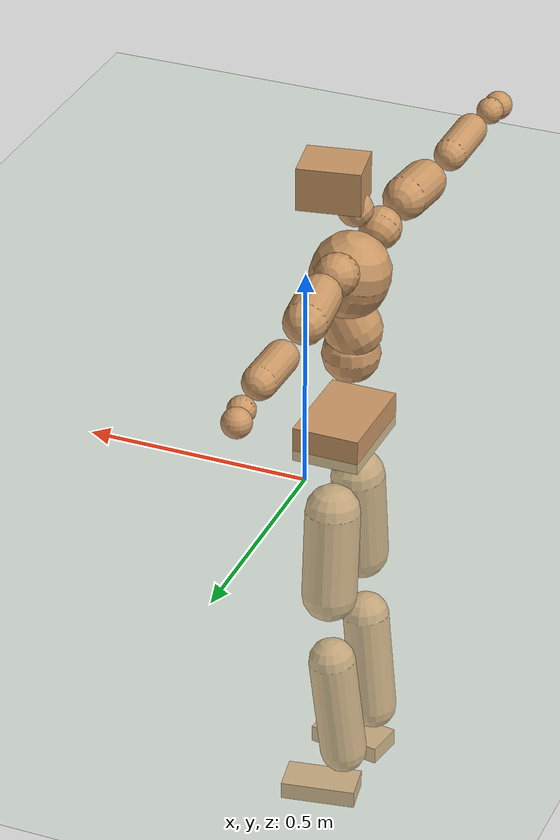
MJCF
<mujoco model="humanoid">
  <compiler coordinate="local" angle="radian"/>
  <default>
    <joint damping="0.0" armature="0.01" stiffness="0.0" limited="true"/>
    <geom conaffinity="1" condim="3" contype="7" margin="0.001" rgba="0.8 0.6 .4 1"/>
  </default>
  <asset>
    <texture type="skybox" builtin="gradient" rgb1=".4 .5 .6" rgb2="0 0 0" width="100" height="100"/>
    <texture builtin="flat" height="1278" mark="cross" markrgb="1 1 1" name="texgeom" random="0.01" rgb1="0.8 0.6 0.4" rgb2="0.8 0.6 0.4" type="cube" width="127"/>
    <texture builtin="checker" height="100" name="texplane" rgb1="0 0 0" rgb2="0.8 0.8 0.8" type="2d" width="100"/>
    <material name="MatPlane" reflectance="0.5" shininess="1" specular="1" texrepeat="60 60" texture="texplane"/>
    <material name="geom" texture="texgeom" texuniform="true"/>
  </asset>
  <worldbody>
    <light cutoff="100" diffuse="1 1 1" dir="-0 0 -1.3" directional="true" exponent="1" pos="0 0 1.3" specular=".1 .1 .1"/>
    <geom conaffinity="1" condim="3" name="floor" pos="0 0 0" rgba="0.8 0.9 0.8 1" size="100 100 .2" type="plane" material="MatPlane"/>
    <body name="Pelvis" pos="0.0007 -0.2125 0.0261">
      <freejoint name="Pelvis"/>
      <geom type="box" contype="1" conaffinity="1" density="5359.375096" pos="-0.0064 0.0001 -0.0128" size="0.0753 0.1114 0.0402" quat="1.0000 0.0000 0.0000 -0.0055" name="Pelvis"/>
      <body name="L_Hip" pos="-0.0113 0.0706 -0.0922">
        <joint name="L_Hip_x" type="hinge" pos="0 0 0" axis="1 0 0" stiffness="1600" damping="160" armature="0.02" range="-180.0000 180.0000"/>
        <joint name="L_Hip_y" type="hinge" pos="0 0 0" axis="0 1 0" stiffness="1600" damping="160" armature="0.02" range="-180.0000 180.0000"/>
        <joint name="L_Hip_z" type="hinge" pos="0 0 0" axis="0 0 1" stiffness="1600" damping="160" armature="0.02" range="-180.0000 180.0000"/>
        <geom type="capsule" contype="1" conaffinity="1" density="2040.816327" size="0.0616" fromto="-0.0005 0.0084 -0.0912 -0.0016 0.0273 -0.2969" name="L_Hip"/>
        <body name="L_Knee" pos="-0.0022 0.0357 -0.3881">
          <joint name="L_Knee_x" type="hinge" pos="0 0 0" axis="1 0 0" stiffness="1600" damping="160" armature="0.02" range="-180.0000 180.0000"/>
          <joint name="L_Knee_y" type="hinge" pos="0 0 0" axis="0 1 0" stiffness="1600" damping="160" armature="0.02" range="-180.0000 180.0000"/>
          <joint name="L_Knee_z" type="hinge" pos="0 0 0" axis="0 0 1" stiffness="1600" damping="160" armature="0.02" range="-180.0000 180.0000"/>
          <geom type="capsule" contype="1" conaffinity="1" density="1234.567901" size="0.053" fromto="-0.0091 -0.0026 -0.0825 -0.0357 -0.0101 -0.3241" name="L_Knee"/>
          <body name="L_Ankle" pos="-0.0447 -0.0126 -0.4065">
            <joint name="L_Ankle_x" type="hinge" pos="0 0 0" axis="1 0 0" stiffness="1600" damping="160" armature="0.02" range="-180.0000 180.0000"/>
            <joint name="L_Ankle_y" type="hinge" pos="0 0 0" axis="0 1 0" stiffness="1600" damping="160" armature="0.02" range="-180.0000 180.0000"/>
            <joint name="L_Ankle_z" type="hinge" pos="0 0 0" axis="0 0 1" stiffness="1600" damping="160" armature="0.02" range="-180.0000 180.0000"/>
            <geom type="box" contype="1" conaffinity="1" density="1000.000038" pos="0.0593 0.0102 -0.0279" size="0.0844 0.0432 0.0203" quat="0.9964 0.0000 0.0000 0.0848" name="L_Ankle"/>
            <body name="L_Toe" pos="0.1187 0.0204 -0.0558">
              <joint name="L_Toe_x" type="hinge" pos="0 0 0" axis="1 0 0" stiffness="1000" damping="100" armature="0.02" range="-180.0000 180.0000"/>
              <joint name="L_Toe_y" type="hinge" pos="0 0 0" axis="0 1 0" stiffness="1000" damping="100" armature="0.02" range="-180.0000 180.0000"/>
              <joint name="L_Toe_z" type="hinge" pos="0 0 0" axis="0 0 1" stiffness="1000" damping="100" armature="0.02" range="-180.0000 180.0000"/>
              <geom type="box" contype="1" conaffinity="1" density="9003058.904709" pos="0.0000 0.0000 0.0275" size="0.0009 0.0022 0.001" quat="0.9958 0.0000 0.0000 0.0915" name="L_Toe"/>
            </body>
          </body>
        </body>
      </body>
      <body name="R_Hip" pos="-0.0079 -0.0678 -0.091">
        <joint name="R_Hip_x" type="hinge" pos="0 0 0" axis="1 0 0" stiffness="1600" damping="160" armature="0.02" range="-180.0000 180.0000"/>
        <joint name="R_Hip_y" type="hinge" pos="0 0 0" axis="0 1 0" stiffness="1600" damping="160" armature="0.02" range="-180.0000 180.0000"/>
        <joint name="R_Hip_z" type="hinge" pos="0 0 0" axis="0 0 1" stiffness="1600" damping="160" armature="0.02" range="-180.0000 180.0000"/>
        <geom type="capsule" contype="1" conaffinity="1" density="2040.816327" size="0.0608" fromto="-0.0012 -0.0092 -0.0903 -0.0039 -0.0313 -0.3063" name="R_Hip"/>
        <body name="R_Knee" pos="-0.0051 -0.0406 -0.3966">
          <joint name="R_Knee_x" type="hinge" pos="0 0 0" axis="1 0 0" stiffness="1600" damping="160" armature="0.02" range="-180.0000 180.0000"/>
          <joint name="R_Knee_y" type="hinge" pos="0 0 0" axis="0 1 0" stiffness="1600" damping="160" armature="0.02" range="-180.0000 180.0000"/>
          <joint name="R_Knee_z" type="hinge" pos="0 0 0" axis="0 0 1" stiffness="1600" damping="160" armature="0.02" range="-180.0000 180.0000"/>
          <geom type="capsule" contype="1" conaffinity="1" density="1234.567901" size="0.0533" fromto="-0.0087 0.0032 -0.0828 -0.0339 0.0124 -0.3237" name="R_Knee"/>
          <body name="R_Ankle" pos="-0.0426 0.0156 -0.4065">
            <joint name="R_Ankle_x" type="hinge" pos="0 0 0" axis="1 0 0" stiffness="1600" damping="160" armature="0.02" range="-180.0000 180.0000"/>
            <joint name="R_Ankle_y" type="hinge" pos="0 0 0" axis="0 1 0" stiffness="1600" damping="160" armature="0.02" range="-180.0000 180.0000"/>
            <joint name="R_Ankle_z" type="hinge" pos="0 0 0" axis="0 0 1" stiffness="1600" damping="160" armature="0.02" range="-180.0000 180.0000"/>
            <geom type="box" contype="1" conaffinity="1" density="999.999995" pos="0.0607 -0.0100 -0.0242" size="0.0856 0.0446 0.0199" quat="0.9967 0.0000 0.0000 -0.0813" name="R_Ankle"/>
            <body name="R_Toe" pos="0.1214 -0.0199 -0.0484">
              <joint name="R_Toe_x" type="hinge" pos="0 0 0" axis="1 0 0" stiffness="1000" damping="100" armature="0.02" range="-180.0000 180.0000"/>
              <joint name="R_Toe_y" type="hinge" pos="0 0 0" axis="0 1 0" stiffness="1000" damping="100" armature="0.02" range="-180.0000 180.0000"/>
              <joint name="R_Toe_z" type="hinge" pos="0 0 0" axis="0 0 1" stiffness="1000" damping="100" armature="0.02" range="-180.0000 180.0000"/>
              <geom type="box" contype="1" conaffinity="1" density="8694667.658405" pos="0.0000 0.0000 0.0257" size="0.0008 0.0022 0.0011" quat="0.9974 0.0000 0.0000 -0.0721" name="R_Toe"/>
            </body>
          </body>
        </body>
      </body>
      <body name="Torso" pos="-0.0191 -0.0024 0.1063">
        <joint name="Torso_x" type="hinge" pos="0 0 0" axis="1 0 0" stiffness="2000" damping="200" armature="0.02" range="-180.0000 180.0000"/>
        <joint name="Torso_y" type="hinge" pos="0 0 0" axis="0 1 0" stiffness="2000" damping="200" armature="0.02" range="-180.0000 180.0000"/>
        <joint name="Torso_z" type="hinge" pos="0 0 0" axis="0 0 1" stiffness="2000" damping="200" armature="0.02" range="-180.0000 180.0000"/>
        <geom type="capsule" contype="1" conaffinity="1" density="2040.816327" size="0.0646" fromto="-0.0007 0.0014 0.0679 -0.0007 0.0015 0.0699" name="Torso"/>
        <body name="Spine" pos="-0.0013 0.0029 0.1379">
          <joint name="Spine_x" type="hinge" pos="0 0 0" axis="1 0 0" stiffness="2000" damping="200" armature="0.02" range="-180.0000 180.0000"/>
          <joint name="Spine_y" type="hinge" pos="0 0 0" axis="0 1 0" stiffness="2000" damping="200" armature="0.02" range="-180.0000 180.0000"/>
          <joint name="Spine_z" type="hinge" pos="0 0 0" axis="0 0 1" stiffness="2000" damping="200" armature="0.02" range="-180.0000 180.0000"/>
          <geom type="capsule" contype="1" conaffinity="1" density="2040.816327" size="0.0643" fromto="0.0301 0.0024 0.0567 -0.0044 -0.0003 -0.0082" name="Spine"/>
          <body name="Chest" pos="0.0257 0.0021 0.0485">
            <joint name="Chest_x" type="hinge" pos="0 0 0" axis="1 0 0" stiffness="2000" damping="200" armature="0.02" range="-180.0000 180.0000"/>
            <joint name="Chest_y" type="hinge" pos="0 0 0" axis="0 1 0" stiffness="2000" damping="200" armature="0.02" range="-180.0000 180.0000"/>
            <joint name="Chest_z" type="hinge" pos="0 0 0" axis="0 0 1" stiffness="2000" damping="200" armature="0.02" range="-180.0000 180.0000"/>
            <geom type="capsule" contype="1" conaffinity="1" density="2040.816327" size="0.0876" fromto="-0.0247 -0.0004 0.0841 -0.0187 -0.0003 0.0637" name="Chest"/>
            <body name="Neck" pos="-0.0544 -0.0006 0.2086">
              <joint name="Neck_x" type="hinge" pos="0 0 0" axis="1 0 0" stiffness="1000" damping="100" armature="0.02" range="-180.0000 180.0000"/>
              <joint name="Neck_y" type="hinge" pos="0 0 0" axis="0 1 0" stiffness="1000" damping="100" armature="0.02" range="-180.0000 180.0000"/>
              <joint name="Neck_z" type="hinge" pos="0 0 0" axis="0 0 1" stiffness="1000" damping="100" armature="0.02" range="-180.0000 180.0000"/>
              <geom type="capsule" contype="1" conaffinity="1" density="1000" size="0.0385" fromto="0.0235 0.0033 0.0304 0.0209 0.0029 0.0270" name="Neck"/>
              <body name="Head" pos="0.0444 0.0062 0.0574">
                <joint name="Head_x" type="hinge" pos="0 0 0" axis="1 0 0" stiffness="1000" damping="100" armature="0.02" range="-180.0000 180.0000"/>
                <joint name="Head_y" type="hinge" pos="0 0 0" axis="0 1 0" stiffness="1000" damping="100" armature="0.02" range="-180.0000 180.0000"/>
                <joint name="Head_z" type="hinge" pos="0 0 0" axis="0 0 1" stiffness="1000" damping="100" armature="0.02" range="-180.0000 180.0000"/>
                <geom type="box" contype="1" conaffinity="1" density="2249.999976" pos="0.0232 0.0041 0.0297" size="0.0692 0.0555 0.0486" quat="0.9962 0.0000 0.0000 0.0876" name="Head"/>
              </body>
            </body>
            <body name="L_Thorax" pos="-0.035 0.0717 0.1186">
              <joint name="L_Thorax_x" type="hinge" pos="0 0 0" axis="1 0 0" stiffness="1000" damping="100" armature="0.02" range="-180.0000 180.0000"/>
              <joint name="L_Thorax_y" type="hinge" pos="0 0 0" axis="0 1 0" stiffness="1000" damping="100" armature="0.02" range="-180.0000 180.0000"/>
              <joint name="L_Thorax_z" type="hinge" pos="0 0 0" axis="0 0 1" stiffness="1000" damping="100" armature="0.02" range="-180.0000 180.0000"/>
              <geom type="capsule" contype="1" conaffinity="1" density="1000" size="0.0474" fromto="-0.0015 0.0436 0.0184 -0.0012 0.0370 0.0156" name="L_Thorax"/>
              <body name="L_Shoulder" pos="-0.0027 0.0806 0.034">
                <joint name="L_Shoulder_x" type="hinge" pos="0 0 0" axis="1 0 0" stiffness="1000" damping="100" armature="0.02" range="-720.0000 720.0000"/>
                <joint name="L_Shoulder_y" type="hinge" pos="0 0 0" axis="0 1 0" stiffness="1000" damping="100" armature="0.02" range="-720.0000 720.0000"/>
                <joint name="L_Shoulder_z" type="hinge" pos="0 0 0" axis="0 0 1" stiffness="1000" damping="100" armature="0.02" range="-720.0000 720.0000"/>
                <geom type="capsule" contype="1" conaffinity="1" density="1000" size="0.0473" fromto="-0.0076 0.0768 -0.0043 -0.0177 0.1794 -0.0100" name="L_Shoulder"/>
                <body name="L_Elbow" pos="-0.0253 0.2562 -0.0142">
                  <joint name="L_Elbow_x" type="hinge" pos="0 0 0" axis="1 0 0" stiffness="1000" damping="100" armature="0.02" range="-720.0000 720.0000"/>
                  <joint name="L_Elbow_y" type="hinge" pos="0 0 0" axis="0 1 0" stiffness="1000" damping="100" armature="0.02" range="-720.0000 720.0000"/>
                  <joint name="L_Elbow_z" type="hinge" pos="0 0 0" axis="0 0 1" stiffness="1000" damping="100" armature="0.02" range="-720.0000 720.0000"/>
                  <geom type="capsule" contype="1" conaffinity="1" density="1000" size="0.0366" fromto="-0.0000 0.0666 0.0026 -0.0001 0.1802 0.0070" name="L_Elbow"/>
                  <body name="L_Wrist" pos="-0.0002 0.2468 0.0096">
                    <joint name="L_Wrist_x" type="hinge" pos="0 0 0" axis="1 0 0" stiffness="600" damping="60" armature="0.02" range="-180.0000 180.0000"/>
                    <joint name="L_Wrist_y" type="hinge" pos="0 0 0" axis="0 1 0" stiffness="600" damping="60" armature="0.02" range="-180.0000 180.0000"/>
                    <joint name="L_Wrist_z" type="hinge" pos="0 0 0" axis="0 0 1" stiffness="600" damping="60" armature="0.02" range="-180.0000 180.0000"/>
                    <geom type="capsule" contype="1" conaffinity="1" density="1000" size="0.0295" fromto="-0.0065 0.0384 -0.0048 -0.0068 0.0404 -0.0050" name="L_Wrist"/>
                    <body name="L_Hand" pos="-0.0134 0.0788 -0.0097">
                      <joint name="L_Hand_x" type="hinge" pos="0 0 0" axis="1 0 0" stiffness="600" damping="60" armature="0.02" range="-180.0000 180.0000"/>
                      <joint name="L_Hand_y" type="hinge" pos="0 0 0" axis="0 1 0" stiffness="600" damping="60" armature="0.02" range="-180.0000 180.0000"/>
                      <joint name="L_Hand_z" type="hinge" pos="0 0 0" axis="0 0 1" stiffness="600" damping="60" armature="0.02" range="-180.0000 180.0000"/>
                      <geom type="sphere" contype="1" conaffinity="1" density="1000" size="0.0317" pos="0.0000 0.0000 0.0000" name="L_Hand"/>
                    </body>
                  </body>
                </body>
              </body>
            </body>
            <body name="R_Thorax" pos="-0.041 -0.0733 0.116">
              <joint name="R_Thorax_x" type="hinge" pos="0 0 0" axis="1 0 0" stiffness="1000" damping="100" armature="0.02" range="-180.0000 180.0000"/>
              <joint name="R_Thorax_y" type="hinge" pos="0 0 0" axis="0 1 0" stiffness="1000" damping="100" armature="0.02" range="-180.0000 180.0000"/>
              <joint name="R_Thorax_z" type="hinge" pos="0 0 0" axis="0 0 1" stiffness="1000" damping="100" armature="0.02" range="-180.0000 180.0000"/>
              <geom type="capsule" contype="1" conaffinity="1" density="1000" size="0.0467" fromto="-0.0033 -0.0427 0.0174 -0.0034 -0.0446 0.0182" name="R_Thorax"/>
              <body name="R_Shoulder" pos="-0.0067 -0.0873 0.0356">
                <joint name="R_Shoulder_x" type="hinge" pos="0 0 0" axis="1 0 0" stiffness="1000" damping="100" armature="0.02" range="-720.0000 720.0000"/>
                <joint name="R_Shoulder_y" type="hinge" pos="0 0 0" axis="0 1 0" stiffness="1000" damping="100" armature="0.02" range="-720.0000 720.0000"/>
                <joint name="R_Shoulder_z" type="hinge" pos="0 0 0" axis="0 0 1" stiffness="1000" damping="100" armature="0.02" range="-720.0000 720.0000"/>
                <geom type="capsule" contype="1" conaffinity="1" density="1000" size="0.0488" fromto="-0.0054 -0.0784 -0.0049 -0.0122 -0.1780 -0.0111" name="R_Shoulder"/>
                <body name="R_Elbow" pos="-0.0175 -0.2564 -0.016">
                  <joint name="R_Elbow_x" type="hinge" pos="0 0 0" axis="1 0 0" stiffness="1000" damping="100" armature="0.02" range="-720.0000 720.0000"/>
                  <joint name="R_Elbow_y" type="hinge" pos="0 0 0" axis="0 1 0" stiffness="1000" damping="100" armature="0.02" range="-720.0000 720.0000"/>
                  <joint name="R_Elbow_z" type="hinge" pos="0 0 0" axis="0 0 1" stiffness="1000" damping="100" armature="0.02" range="-720.0000 720.0000"/>
                  <geom type="capsule" contype="1" conaffinity="1" density="1000" size="0.0366" fromto="-0.0015 -0.0666 0.0020 -0.0044 -0.1912 0.0058" name="R_Elbow"/>
                  <body name="R_Wrist" pos="-0.0059 -0.2578 0.0078">
                    <joint name="R_Wrist_x" type="hinge" pos="0 0 0" axis="1 0 0" stiffness="600" damping="60" armature="0.02" range="-180.0000 180.0000"/>
                    <joint name="R_Wrist_y" type="hinge" pos="0 0 0" axis="0 1 0" stiffness="600" damping="60" armature="0.02" range="-180.0000 180.0000"/>
                    <joint name="R_Wrist_z" type="hinge" pos="0 0 0" axis="0 0 1" stiffness="600" damping="60" armature="0.02" range="-180.0000 180.0000"/>
                    <geom type="capsule" contype="1" conaffinity="1" density="1000" size="0.0305" fromto="-0.0052 -0.0396 -0.0035 -0.0054 -0.0416 -0.0037" name="R_Wrist"/>
                    <body name="R_Hand" pos="-0.0106 -0.0812 -0.0072">
                      <joint name="R_Hand_x" type="hinge" pos="0 0 0" axis="1 0 0" stiffness="600" damping="60" armature="0.02" range="-180.0000 180.0000"/>
                      <joint name="R_Hand_y" type="hinge" pos="0 0 0" axis="0 1 0" stiffness="600" damping="60" armature="0.02" range="-180.0000 180.0000"/>
                      <joint name="R_Hand_z" type="hinge" pos="0 0 0" axis="0 0 1" stiffness="600" damping="60" armature="0.02" range="-180.0000 180.0000"/>
                      <geom type="sphere" contype="1" conaffinity="1" density="1000" size="0.0324" pos="0.0000 0.0000 0.0000" name="R_Hand"/>
                    </body>
                  </body>
                </body>
              </body>
            </body>
          </body>
        </body>
      </body>
    </body>
  </worldbody>
  <actuator>
    <motor name="L_Hip_x" joint="L_Hip_x" gear="500"/>
    <motor name="L_Hip_y" joint="L_Hip_y" gear="500"/>
    <motor name="L_Hip_z" joint="L_Hip_z" gear="500"/>
    <motor name="L_Knee_x" joint="L_Knee_x" gear="500"/>
    <motor name="L_Knee_y" joint="L_Knee_y" gear="500"/>
    <motor name="L_Knee_z" joint="L_Knee_z" gear="500"/>
    <motor name="L_Ankle_x" joint="L_Ankle_x" gear="500"/>
    <motor name="L_Ankle_y" joint="L_Ankle_y" gear="500"/>
    <motor name="L_Ankle_z" joint="L_Ankle_z" gear="500"/>
    <motor name="L_Toe_x" joint="L_Toe_x" gear="500"/>
    <motor name="L_Toe_y" joint="L_Toe_y" gear="500"/>
    <motor name="L_Toe_z" joint="L_Toe_z" gear="500"/>
    <motor name="R_Hip_x" joint="R_Hip_x" gear="500"/>
    <motor name="R_Hip_y" joint="R_Hip_y" gear="500"/>
    <motor name="R_Hip_z" joint="R_Hip_z" gear="500"/>
    <motor name="R_Knee_x" joint="R_Knee_x" gear="500"/>
    <motor name="R_Knee_y" joint="R_Knee_y" gear="500"/>
    <motor name="R_Knee_z" joint="R_Knee_z" gear="500"/>
    <motor name="R_Ankle_x" joint="R_Ankle_x" gear="500"/>
    <motor name="R_Ankle_y" joint="R_Ankle_y" gear="500"/>
    <motor name="R_Ankle_z" joint="R_Ankle_z" gear="500"/>
    <motor name="R_Toe_x" joint="R_Toe_x" gear="500"/>
    <motor name="R_Toe_y" joint="R_Toe_y" gear="500"/>
    <motor name="R_Toe_z" joint="R_Toe_z" gear="500"/>
    <motor name="Torso_x" joint="Torso_x" gear="500"/>
    <motor name="Torso_y" joint="Torso_y" gear="500"/>
    <motor name="Torso_z" joint="Torso_z" gear="500"/>
    <motor name="Spine_x" joint="Spine_x" gear="500"/>
    <motor name="Spine_y" joint="Spine_y" gear="500"/>
    <motor name="Spine_z" joint="Spine_z" gear="500"/>
    <motor name="Chest_x" joint="Chest_x" gear="500"/>
    <motor name="Chest_y" joint="Chest_y" gear="500"/>
    <motor name="Chest_z" joint="Chest_z" gear="500"/>
    <motor name="Neck_x" joint="Neck_x" gear="500"/>
    <motor name="Neck_y" joint="Neck_y" gear="500"/>
    <motor name="Neck_z" joint="Neck_z" gear="500"/>
    <motor name="Head_x" joint="Head_x" gear="500"/>
    <motor name="Head_y" joint="Head_y" gear="500"/>
    <motor name="Head_z" joint="Head_z" gear="500"/>
    <motor name="L_Thorax_x" joint="L_Thorax_x" gear="500"/>
    <motor name="L_Thorax_y" joint="L_Thorax_y" gear="500"/>
    <motor name="L_Thorax_z" joint="L_Thorax_z" gear="500"/>
    <motor name="L_Shoulder_x" joint="L_Shoulder_x" gear="500"/>
    <motor name="L_Shoulder_y" joint="L_Shoulder_y" gear="500"/>
    <motor name="L_Shoulder_z" joint="L_Shoulder_z" gear="500"/>
    <motor name="L_Elbow_x" joint="L_Elbow_x" gear="500"/>
    <motor name="L_Elbow_y" joint="L_Elbow_y" gear="500"/>
    <motor name="L_Elbow_z" joint="L_Elbow_z" gear="500"/>
    <motor name="L_Wrist_x" joint="L_Wrist_x" gear="500"/>
    <motor name="L_Wrist_y" joint="L_Wrist_y" gear="500"/>
    <motor name="L_Wrist_z" joint="L_Wrist_z" gear="500"/>
    <motor name="L_Hand_x" joint="L_Hand_x" gear="500"/>
    <motor name="L_Hand_y" joint="L_Hand_y" gear="500"/>
    <motor name="L_Hand_z" joint="L_Hand_z" gear="500"/>
    <motor name="R_Thorax_x" joint="R_Thorax_x" gear="500"/>
    <motor name="R_Thorax_y" joint="R_Thorax_y" gear="500"/>
    <motor name="R_Thorax_z" joint="R_Thorax_z" gear="500"/>
    <motor name="R_Shoulder_x" joint="R_Shoulder_x" gear="500"/>
    <motor name="R_Shoulder_y" joint="R_Shoulder_y" gear="500"/>
    <motor name="R_Shoulder_z" joint="R_Shoulder_z" gear="500"/>
    <motor name="R_Elbow_x" joint="R_Elbow_x" gear="500"/>
    <motor name="R_Elbow_y" joint="R_Elbow_y" gear="500"/>
    <motor name="R_Elbow_z" joint="R_Elbow_z" gear="500"/>
    <motor name="R_Wrist_x" joint="R_Wrist_x" gear="500"/>
    <motor name="R_Wrist_y" joint="R_Wrist_y" gear="500"/>
    <motor name="R_Wrist_z" joint="R_Wrist_z" gear="500"/>
    <motor name="R_Hand_x" joint="R_Hand_x" gear="500"/>
    <motor name="R_Hand_y" joint="R_Hand_y" gear="500"/>
    <motor name="R_Hand_z" joint="R_Hand_z" gear="500"/>
  </actuator>
  <contact>
    <exclude body1="Torso" body2="Chest"/>
    <exclude body1="Head" body2="Chest"/>
    <exclude body1="R_Knee" body2="R_Toe"/>
    <exclude body1="R_Knee" body2="L_Ankle"/>
    <exclude body1="R_Knee" body2="L_Toe"/>
    <exclude body1="L_Knee" body2="L_Toe"/>
    <exclude body1="L_Knee" body2="R_Ankle"/>
    <exclude body1="L_Knee" body2="R_Toe"/>
    <exclude body1="L_Shoulder" body2="Chest"/>
    <exclude body1="R_Shoulder" body2="Chest"/>
  </contact>
  <sensor/>
  <size njmax="700" nconmax="700"/>
</mujoco>
